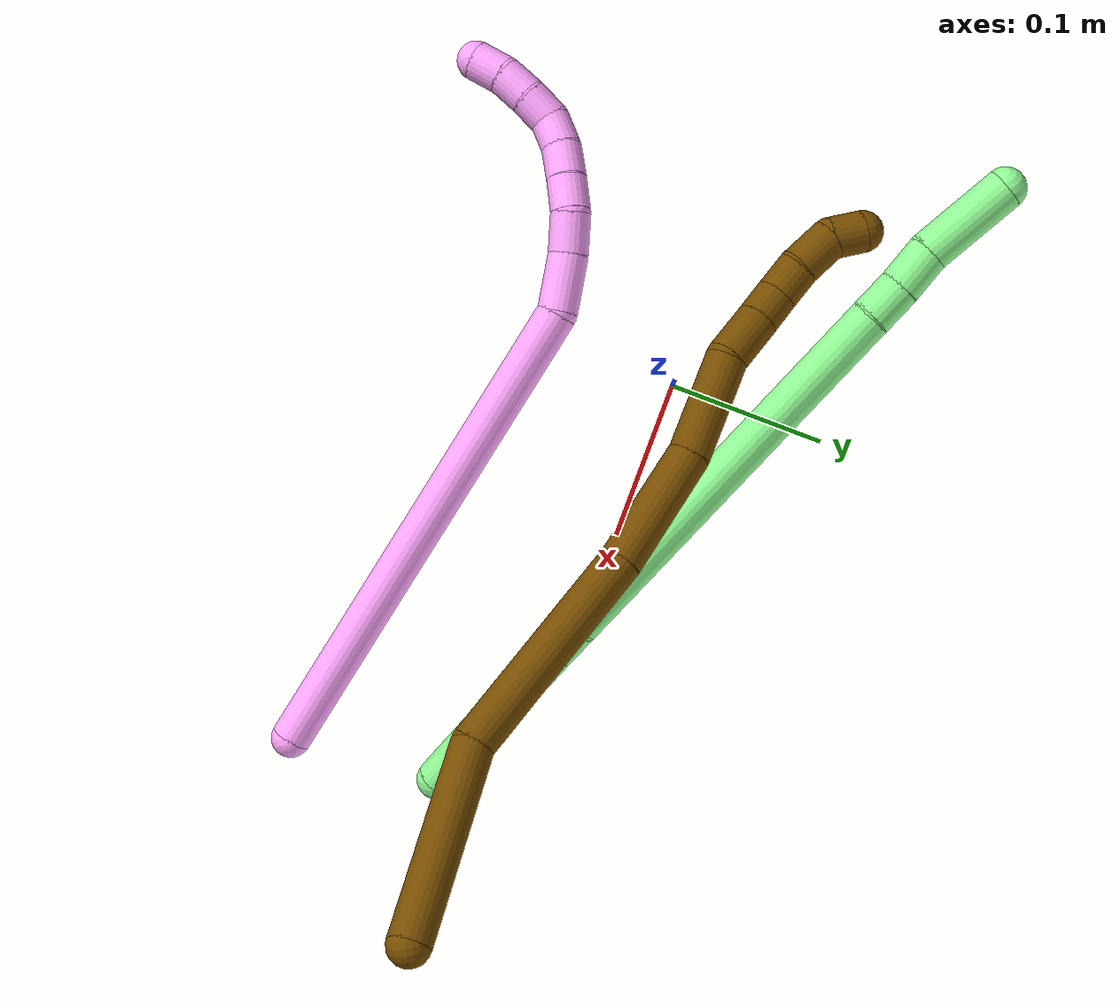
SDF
<sdf version="1.7">
 <world name="default">
  <model name="4">
   <static>0</static>
   <link name="4">
    <collision name="collision-cylinder-e_1_1_4">
     <pose>-0.096292 0.088635 0.085716 -0.802138 -0.663014 0.28988</pose>
     <geometry><cylinder><radius>0.0125</radius><length>0.312892</length></cylinder></geometry>
     <surface>
      <friction><ode><mu>1.16</mu><mu2>1.16</mu2><slip1>0</slip1><slip2>0</slip2></ode></friction>
      <contact><ode><kp>1e+06</kp><kd>1</kd><max_vel>0</max_vel><min_depth>0.001</min_depth></ode></contact>
     </surface>
    </collision>
    <visual name="visual-cylinder-e_1_1_4">
     <pose>-0.096292 0.088635 0.085716 -0.802138 -0.663014 0.28988</pose>
     <geometry><cylinder><radius>0.0125</radius><length>0.312892</length></cylinder></geometry>
     <material><ambient>1 0.65098 0.996078 1</ambient></material>
    </visual>
    <collision name="collision-cylinder-e_2_4_5">
     <pose>-0.197075 0.190198 0.183715 -0.810998 -0.246712 0.106351</pose>
     <geometry><cylinder><radius>0.0125</radius><length>0.036781</length></cylinder></geometry>
     <surface>
      <friction><ode><mu>1.16</mu><mu2>1.16</mu2><slip1>0</slip1><slip2>0</slip2></ode></friction>
      <contact><ode><kp>1e+06</kp><kd>1</kd><max_vel>0</max_vel><min_depth>0.001</min_depth></ode></contact>
     </surface>
    </collision>
    <visual name="visual-cylinder-e_2_4_5">
     <pose>-0.197075 0.190198 0.183715 -0.810998 -0.246712 0.106351</pose>
     <geometry><cylinder><radius>0.0125</radius><length>0.036781</length></cylinder></geometry>
     <material><ambient>1 0.65098 0.996078 1</ambient></material>
    </visual>
    <collision name="collision-cylinder-e_3_5_6">
     <pose>-0.203853 0.213653 0.203356 -0.960692 -0.17622 0.091993</pose>
     <geometry><cylinder><radius>0.0125</radius><length>0.02609</length></cylinder></geometry>
     <surface>
      <friction><ode><mu>1.16</mu><mu2>1.16</mu2><slip1>0</slip1><slip2>0</slip2></ode></friction>
      <contact><ode><kp>1e+06</kp><kd>1</kd><max_vel>0</max_vel><min_depth>0.001</min_depth></ode></contact>
     </surface>
    </collision>
    <visual name="visual-cylinder-e_3_5_6">
     <pose>-0.203853 0.213653 0.203356 -0.960692 -0.17622 0.091993</pose>
     <geometry><cylinder><radius>0.0125</radius><length>0.02609</length></cylinder></geometry>
     <material><ambient>1 0.65098 0.996078 1</ambient></material>
    </visual>
    <collision name="collision-cylinder-e_4_6_7">
     <pose>-0.20519 0.231964 0.218307 -0.797916 0.087109 -0.036741</pose>
     <geometry><cylinder><radius>0.0125</radius><length>0.021832</length></cylinder></geometry>
     <surface>
      <friction><ode><mu>1.16</mu><mu2>1.16</mu2><slip1>0</slip1><slip2>0</slip2></ode></friction>
      <contact><ode><kp>1e+06</kp><kd>1</kd><max_vel>0</max_vel><min_depth>0.001</min_depth></ode></contact>
     </surface>
    </collision>
    <visual name="visual-cylinder-e_4_6_7">
     <pose>-0.20519 0.231964 0.218307 -0.797916 0.087109 -0.036741</pose>
     <geometry><cylinder><radius>0.0125</radius><length>0.021832</length></cylinder></geometry>
     <material><ambient>1 0.65098 0.996078 1</ambient></material>
    </visual>
    <collision name="collision-cylinder-e_5_7_8">
     <pose>-0.202713 0.24695 0.233631 -0.749929 0.143566 -0.056588</pose>
     <geometry><cylinder><radius>0.0125</radius><length>0.02135</length></cylinder></geometry>
     <surface>
      <friction><ode><mu>1.16</mu><mu2>1.16</mu2><slip1>0</slip1><slip2>0</slip2></ode></friction>
      <contact><ode><kp>1e+06</kp><kd>1</kd><max_vel>0</max_vel><min_depth>0.001</min_depth></ode></contact>
     </surface>
    </collision>
    <visual name="visual-cylinder-e_5_7_8">
     <pose>-0.202713 0.24695 0.233631 -0.749929 0.143566 -0.056588</pose>
     <geometry><cylinder><radius>0.0125</radius><length>0.02135</length></cylinder></geometry>
     <material><ambient>1 0.65098 0.996078 1</ambient></material>
    </visual>
    <collision name="collision-cylinder-e_6_8_9">
     <pose>-0.1979 0.261306 0.247694 -0.846372 0.331224 -0.150279</pose>
     <geometry><cylinder><radius>0.0125</radius><length>0.020207</length></cylinder></geometry>
     <surface>
      <friction><ode><mu>1.16</mu><mu2>1.16</mu2><slip1>0</slip1><slip2>0</slip2></ode></friction>
      <contact><ode><kp>1e+06</kp><kd>1</kd><max_vel>0</max_vel><min_depth>0.001</min_depth></ode></contact>
     </surface>
    </collision>
    <visual name="visual-cylinder-e_6_8_9">
     <pose>-0.1979 0.261306 0.247694 -0.846372 0.331224 -0.150279</pose>
     <geometry><cylinder><radius>0.0125</radius><length>0.020207</length></cylinder></geometry>
     <material><ambient>1 0.65098 0.996078 1</ambient></material>
    </visual>
    <collision name="collision-cylinder-e_7_9_10">
     <pose>-0.189021 0.276469 0.256418 -1.28039 0.589819 -0.445026</pose>
     <geometry><cylinder><radius>0.0125</radius><length>0.020114</length></cylinder></geometry>
     <surface>
      <friction><ode><mu>1.16</mu><mu2>1.16</mu2><slip1>0</slip1><slip2>0</slip2></ode></friction>
      <contact><ode><kp>1e+06</kp><kd>1</kd><max_vel>0</max_vel><min_depth>0.001</min_depth></ode></contact>
     </surface>
    </collision>
    <visual name="visual-cylinder-e_7_9_10">
     <pose>-0.189021 0.276469 0.256418 -1.28039 0.589819 -0.445026</pose>
     <geometry><cylinder><radius>0.0125</radius><length>0.020114</length></cylinder></geometry>
     <material><ambient>1 0.65098 0.996078 1</ambient></material>
    </visual>
    <collision name="collision-cylinder-e_8_10_11">
     <pose>-0.176864 0.291588 0.261771 -1.17649 0.705701 -0.481734</pose>
     <geometry><cylinder><radius>0.0125</radius><length>0.02024</length></cylinder></geometry>
     <surface>
      <friction><ode><mu>1.16</mu><mu2>1.16</mu2><slip1>0</slip1><slip2>0</slip2></ode></friction>
      <contact><ode><kp>1e+06</kp><kd>1</kd><max_vel>0</max_vel><min_depth>0.001</min_depth></ode></contact>
     </surface>
    </collision>
    <visual name="visual-cylinder-e_8_10_11">
     <pose>-0.176864 0.291588 0.261771 -1.17649 0.705701 -0.481734</pose>
     <geometry><cylinder><radius>0.0125</radius><length>0.02024</length></cylinder></geometry>
     <material><ambient>1 0.65098 0.996078 1</ambient></material>
    </visual>
    <collision name="collision-cylinder-e_9_11_2">
     <pose>-0.162062 0.304273 0.267197 -1.15407 0.933866 -0.634154</pose>
     <geometry><cylinder><radius>0.0125</radius><length>0.020495</length></cylinder></geometry>
     <surface>
      <friction><ode><mu>1.16</mu><mu2>1.16</mu2><slip1>0</slip1><slip2>0</slip2></ode></friction>
      <contact><ode><kp>1e+06</kp><kd>1</kd><max_vel>0</max_vel><min_depth>0.001</min_depth></ode></contact>
     </surface>
    </collision>
    <visual name="visual-cylinder-e_9_11_2">
     <pose>-0.162062 0.304273 0.267197 -1.15407 0.933866 -0.634154</pose>
     <geometry><cylinder><radius>0.0125</radius><length>0.020495</length></cylinder></geometry>
     <material><ambient>1 0.65098 0.996078 1</ambient></material>
    </visual>
    <collision name="collision-sphere-2">
     <pose>-0.153824 0.309846 0.269664 0 -0 0</pose>
     <geometry><sphere><radius>0.0125</radius></sphere></geometry>
     <surface>
      <friction><ode><mu>1.16</mu><mu2>1.16</mu2><slip1>0</slip1><slip2>0</slip2></ode></friction>
      <contact><ode><kp>1e+06</kp><kd>1</kd><max_vel>0</max_vel><min_depth>0.001</min_depth></ode></contact>
     </surface>
    </collision>
    <visual name="visual-sphere-2">
     <pose>-0.153824 0.309846 0.269664 0 -0 0</pose>
     <geometry><sphere><radius>0.0125</radius></sphere></geometry>
     <material><ambient>1 0.65098 0.996078 1</ambient></material>
    </visual>
    <collision name="collision-sphere-11">
     <pose>-0.1703 0.2987 0.26473 0 -0 0</pose>
     <geometry><sphere><radius>0.0125</radius></sphere></geometry>
     <surface>
      <friction><ode><mu>1.16</mu><mu2>1.16</mu2><slip1>0</slip1><slip2>0</slip2></ode></friction>
      <contact><ode><kp>1e+06</kp><kd>1</kd><max_vel>0</max_vel><min_depth>0.001</min_depth></ode></contact>
     </surface>
    </collision>
    <visual name="visual-sphere-11">
     <pose>-0.1703 0.2987 0.26473 0 -0 0</pose>
     <geometry><sphere><radius>0.0125</radius></sphere></geometry>
     <material><ambient>1 0.65098 0.996078 1</ambient></material>
    </visual>
    <collision name="collision-sphere-10">
     <pose>-0.183427 0.284477 0.258812 0 -0 0</pose>
     <geometry><sphere><radius>0.0125</radius></sphere></geometry>
     <surface>
      <friction><ode><mu>1.16</mu><mu2>1.16</mu2><slip1>0</slip1><slip2>0</slip2></ode></friction>
      <contact><ode><kp>1e+06</kp><kd>1</kd><max_vel>0</max_vel><min_depth>0.001</min_depth></ode></contact>
     </surface>
    </collision>
    <visual name="visual-sphere-10">
     <pose>-0.183427 0.284477 0.258812 0 -0 0</pose>
     <geometry><sphere><radius>0.0125</radius></sphere></geometry>
     <material><ambient>1 0.65098 0.996078 1</ambient></material>
    </visual>
    <collision name="collision-sphere-9">
     <pose>-0.194614 0.268461 0.254025 0 -0 0</pose>
     <geometry><sphere><radius>0.0125</radius></sphere></geometry>
     <surface>
      <friction><ode><mu>1.16</mu><mu2>1.16</mu2><slip1>0</slip1><slip2>0</slip2></ode></friction>
      <contact><ode><kp>1e+06</kp><kd>1</kd><max_vel>0</max_vel><min_depth>0.001</min_depth></ode></contact>
     </surface>
    </collision>
    <visual name="visual-sphere-9">
     <pose>-0.194614 0.268461 0.254025 0 -0 0</pose>
     <geometry><sphere><radius>0.0125</radius></sphere></geometry>
     <material><ambient>1 0.65098 0.996078 1</ambient></material>
    </visual>
    <collision name="collision-sphere-4">
     <pose>-0.192584 0.177269 0.171431 0 -0 0</pose>
     <geometry><sphere><radius>0.0125</radius></sphere></geometry>
     <surface>
      <friction><ode><mu>1.16</mu><mu2>1.16</mu2><slip1>0</slip1><slip2>0</slip2></ode></friction>
      <contact><ode><kp>1e+06</kp><kd>1</kd><max_vel>0</max_vel><min_depth>0.001</min_depth></ode></contact>
     </surface>
    </collision>
    <visual name="visual-sphere-4">
     <pose>-0.192584 0.177269 0.171431 0 -0 0</pose>
     <geometry><sphere><radius>0.0125</radius></sphere></geometry>
     <material><ambient>1 0.65098 0.996078 1</ambient></material>
    </visual>
    <collision name="collision-sphere-1">
     <geometry><sphere><radius>0.0125</radius></sphere></geometry>
     <surface>
      <friction><ode><mu>1.16</mu><mu2>1.16</mu2><slip1>0</slip1><slip2>0</slip2></ode></friction>
      <contact><ode><kp>1e+06</kp><kd>1</kd><max_vel>0</max_vel><min_depth>0.001</min_depth></ode></contact>
     </surface>
    </collision>
    <visual name="visual-sphere-1">
     <geometry><sphere><radius>0.0125</radius></sphere></geometry>
     <material><ambient>1 0.65098 0.996078 1</ambient></material>
    </visual>
    <collision name="collision-sphere-8">
     <pose>-0.201186 0.254151 0.241362 0 -0 0</pose>
     <geometry><sphere><radius>0.0125</radius></sphere></geometry>
     <surface>
      <friction><ode><mu>1.16</mu><mu2>1.16</mu2><slip1>0</slip1><slip2>0</slip2></ode></friction>
      <contact><ode><kp>1e+06</kp><kd>1</kd><max_vel>0</max_vel><min_depth>0.001</min_depth></ode></contact>
     </surface>
    </collision>
    <visual name="visual-sphere-8">
     <pose>-0.201186 0.254151 0.241362 0 -0 0</pose>
     <geometry><sphere><radius>0.0125</radius></sphere></geometry>
     <material><ambient>1 0.65098 0.996078 1</ambient></material>
    </visual>
    <collision name="collision-sphere-5">
     <pose>-0.201566 0.203127 0.195998 0 -0 0</pose>
     <geometry><sphere><radius>0.0125</radius></sphere></geometry>
     <surface>
      <friction><ode><mu>1.16</mu><mu2>1.16</mu2><slip1>0</slip1><slip2>0</slip2></ode></friction>
      <contact><ode><kp>1e+06</kp><kd>1</kd><max_vel>0</max_vel><min_depth>0.001</min_depth></ode></contact>
     </surface>
    </collision>
    <visual name="visual-sphere-5">
     <pose>-0.201566 0.203127 0.195998 0 -0 0</pose>
     <geometry><sphere><radius>0.0125</radius></sphere></geometry>
     <material><ambient>1 0.65098 0.996078 1</ambient></material>
    </visual>
    <collision name="collision-sphere-6">
     <pose>-0.20614 0.224178 0.210714 0 -0 0</pose>
     <geometry><sphere><radius>0.0125</radius></sphere></geometry>
     <surface>
      <friction><ode><mu>1.16</mu><mu2>1.16</mu2><slip1>0</slip1><slip2>0</slip2></ode></friction>
      <contact><ode><kp>1e+06</kp><kd>1</kd><max_vel>0</max_vel><min_depth>0.001</min_depth></ode></contact>
     </surface>
    </collision>
    <visual name="visual-sphere-6">
     <pose>-0.20614 0.224178 0.210714 0 -0 0</pose>
     <geometry><sphere><radius>0.0125</radius></sphere></geometry>
     <material><ambient>1 0.65098 0.996078 1</ambient></material>
    </visual>
    <collision name="collision-sphere-7">
     <pose>-0.20424 0.239749 0.2259 0 -0 0</pose>
     <geometry><sphere><radius>0.0125</radius></sphere></geometry>
     <surface>
      <friction><ode><mu>1.16</mu><mu2>1.16</mu2><slip1>0</slip1><slip2>0</slip2></ode></friction>
      <contact><ode><kp>1e+06</kp><kd>1</kd><max_vel>0</max_vel><min_depth>0.001</min_depth></ode></contact>
     </surface>
    </collision>
    <visual name="visual-sphere-7">
     <pose>-0.20424 0.239749 0.2259 0 -0 0</pose>
     <geometry><sphere><radius>0.0125</radius></sphere></geometry>
     <material><ambient>1 0.65098 0.996078 1</ambient></material>
    </visual>
    <inertial>
     <pose>-0.132411 0.147236 0.139147 0 -0 0</pose>
     <mass>0.5</mass>
     <inertia>
      <ixx>0.002517</ixx>
      <ixy>0</ixy>
      <ixz>0</ixz>
      <iyy>0.002646</iyy>
      <iyz>0</iyz>
      <izz>0.000132</izz>
     </inertia>
    </inertial>
   </link>
   <pose>0.289521 -0.145979 0.012458 2.57722 0.377996 -1.0923</pose>
  </model>
  <model name="12">
   <static>0</static>
   <link name="12">
    <collision name="collision-cylinder-e_1_1_4">
     <pose>-0.009654 0.043946 -0.035239 -2.24668 -0.169734 0.350878</pose>
     <geometry><cylinder><radius>0.0125</radius><length>0.114303</length></cylinder></geometry>
     <surface>
      <friction><ode><mu>1.16</mu><mu2>1.16</mu2><slip1>0</slip1><slip2>0</slip2></ode></friction>
      <contact><ode><kp>1e+06</kp><kd>1</kd><max_vel>0</max_vel><min_depth>0.001</min_depth></ode></contact>
     </surface>
    </collision>
    <visual name="visual-cylinder-e_1_1_4">
     <pose>-0.009654 0.043946 -0.035239 -2.24668 -0.169734 0.350878</pose>
     <geometry><cylinder><radius>0.0125</radius><length>0.114303</length></cylinder></geometry>
     <material><ambient>0.466667 0.301961 0 1</ambient></material>
    </visual>
    <collision name="collision-cylinder-e_2_4_5">
     <pose>-0.054927 0.133046 -0.102937 -2.19405 -0.569677 1.03775</pose>
     <geometry><cylinder><radius>0.0125</radius><length>0.132077</length></cylinder></geometry>
     <surface>
      <friction><ode><mu>1.16</mu><mu2>1.16</mu2><slip1>0</slip1><slip2>0</slip2></ode></friction>
      <contact><ode><kp>1e+06</kp><kd>1</kd><max_vel>0</max_vel><min_depth>0.001</min_depth></ode></contact>
     </surface>
    </collision>
    <visual name="visual-cylinder-e_2_4_5">
     <pose>-0.054927 0.133046 -0.102937 -2.19405 -0.569677 1.03775</pose>
     <geometry><cylinder><radius>0.0125</radius><length>0.132077</length></cylinder></geometry>
     <material><ambient>0.466667 0.301961 0 1</ambient></material>
    </visual>
    <collision name="collision-cylinder-e_3_5_6">
     <pose>-0.108484 0.202322 -0.157093 -2.30335 -0.505071 1.04997</pose>
     <geometry><cylinder><radius>0.0125</radius><length>0.074148</length></cylinder></geometry>
     <surface>
      <friction><ode><mu>1.16</mu><mu2>1.16</mu2><slip1>0</slip1><slip2>0</slip2></ode></friction>
      <contact><ode><kp>1e+06</kp><kd>1</kd><max_vel>0</max_vel><min_depth>0.001</min_depth></ode></contact>
     </surface>
    </collision>
    <visual name="visual-cylinder-e_3_5_6">
     <pose>-0.108484 0.202322 -0.157093 -2.30335 -0.505071 1.04997</pose>
     <geometry><cylinder><radius>0.0125</radius><length>0.074148</length></cylinder></geometry>
     <material><ambient>0.466667 0.301961 0 1</ambient></material>
    </visual>
    <collision name="collision-cylinder-e_4_6_7">
     <pose>-0.137534 0.243563 -0.201363 -2.49272 -0.373757 1.02435</pose>
     <geometry><cylinder><radius>0.0125</radius><length>0.060859</length></cylinder></geometry>
     <surface>
      <friction><ode><mu>1.16</mu><mu2>1.16</mu2><slip1>0</slip1><slip2>0</slip2></ode></friction>
      <contact><ode><kp>1e+06</kp><kd>1</kd><max_vel>0</max_vel><min_depth>0.001</min_depth></ode></contact>
     </surface>
    </collision>
    <visual name="visual-cylinder-e_4_6_7">
     <pose>-0.137534 0.243563 -0.201363 -2.49272 -0.373757 1.02435</pose>
     <geometry><cylinder><radius>0.0125</radius><length>0.060859</length></cylinder></geometry>
     <material><ambient>0.466667 0.301961 0 1</ambient></material>
    </visual>
    <collision name="collision-cylinder-e_5_7_8">
     <pose>-0.156283 0.272019 -0.231073 -2.1327 -0.518209 0.895213</pose>
     <geometry><cylinder><radius>0.0125</radius><length>0.030846</length></cylinder></geometry>
     <surface>
      <friction><ode><mu>1.16</mu><mu2>1.16</mu2><slip1>0</slip1><slip2>0</slip2></ode></friction>
      <contact><ode><kp>1e+06</kp><kd>1</kd><max_vel>0</max_vel><min_depth>0.001</min_depth></ode></contact>
     </surface>
    </collision>
    <visual name="visual-cylinder-e_5_7_8">
     <pose>-0.156283 0.272019 -0.231073 -2.1327 -0.518209 0.895213</pose>
     <geometry><cylinder><radius>0.0125</radius><length>0.030846</length></cylinder></geometry>
     <material><ambient>0.466667 0.301961 0 1</ambient></material>
    </visual>
    <collision name="collision-cylinder-e_6_8_9">
     <pose>-0.168951 0.290699 -0.243178 -2.16558 -0.516 0.922666</pose>
     <geometry><cylinder><radius>0.0125</radius><length>0.020381</length></cylinder></geometry>
     <surface>
      <friction><ode><mu>1.16</mu><mu2>1.16</mu2><slip1>0</slip1><slip2>0</slip2></ode></friction>
      <contact><ode><kp>1e+06</kp><kd>1</kd><max_vel>0</max_vel><min_depth>0.001</min_depth></ode></contact>
     </surface>
    </collision>
    <visual name="visual-cylinder-e_6_8_9">
     <pose>-0.168951 0.290699 -0.243178 -2.16558 -0.516 0.922666</pose>
     <geometry><cylinder><radius>0.0125</radius><length>0.020381</length></cylinder></geometry>
     <material><ambient>0.466667 0.301961 0 1</ambient></material>
    </visual>
    <collision name="collision-cylinder-e_7_9_10">
     <pose>-0.180673 0.303252 -0.254427 -2.44915 -0.68693 1.56213</pose>
     <geometry><cylinder><radius>0.0125</radius><length>0.021113</length></cylinder></geometry>
     <surface>
      <friction><ode><mu>1.16</mu><mu2>1.16</mu2><slip1>0</slip1><slip2>0</slip2></ode></friction>
      <contact><ode><kp>1e+06</kp><kd>1</kd><max_vel>0</max_vel><min_depth>0.001</min_depth></ode></contact>
     </surface>
    </collision>
    <visual name="visual-cylinder-e_7_9_10">
     <pose>-0.180673 0.303252 -0.254427 -2.44915 -0.68693 1.56213</pose>
     <geometry><cylinder><radius>0.0125</radius><length>0.021113</length></cylinder></geometry>
     <material><ambient>0.466667 0.301961 0 1</ambient></material>
    </visual>
    <collision name="collision-cylinder-e_8_10_11">
     <pose>-0.196237 0.316191 -0.266413 -2.20657 -0.745563 1.31817</pose>
     <geometry><cylinder><radius>0.0125</radius><length>0.026149</length></cylinder></geometry>
     <surface>
      <friction><ode><mu>1.16</mu><mu2>1.16</mu2><slip1>0</slip1><slip2>0</slip2></ode></friction>
      <contact><ode><kp>1e+06</kp><kd>1</kd><max_vel>0</max_vel><min_depth>0.001</min_depth></ode></contact>
     </surface>
    </collision>
    <visual name="visual-cylinder-e_8_10_11">
     <pose>-0.196237 0.316191 -0.266413 -2.20657 -0.745563 1.31817</pose>
     <geometry><cylinder><radius>0.0125</radius><length>0.026149</length></cylinder></geometry>
     <material><ambient>0.466667 0.301961 0 1</ambient></material>
    </visual>
    <collision name="collision-cylinder-e_9_11_2">
     <pose>-0.213887 0.328829 -0.271887 -1.524 -1.06055 1.02018</pose>
     <geometry><cylinder><radius>0.0125</radius><length>0.020124</length></cylinder></geometry>
     <surface>
      <friction><ode><mu>1.16</mu><mu2>1.16</mu2><slip1>0</slip1><slip2>0</slip2></ode></friction>
      <contact><ode><kp>1e+06</kp><kd>1</kd><max_vel>0</max_vel><min_depth>0.001</min_depth></ode></contact>
     </surface>
    </collision>
    <visual name="visual-cylinder-e_9_11_2">
     <pose>-0.213887 0.328829 -0.271887 -1.524 -1.06055 1.02018</pose>
     <geometry><cylinder><radius>0.0125</radius><length>0.020124</length></cylinder></geometry>
     <material><ambient>0.466667 0.301961 0 1</ambient></material>
    </visual>
    <collision name="collision-sphere-2">
     <pose>-0.222668 0.333738 -0.271657 0 -0 0</pose>
     <geometry><sphere><radius>0.0125</radius></sphere></geometry>
     <surface>
      <friction><ode><mu>1.16</mu><mu2>1.16</mu2><slip1>0</slip1><slip2>0</slip2></ode></friction>
      <contact><ode><kp>1e+06</kp><kd>1</kd><max_vel>0</max_vel><min_depth>0.001</min_depth></ode></contact>
     </surface>
    </collision>
    <visual name="visual-sphere-2">
     <pose>-0.222668 0.333738 -0.271657 0 -0 0</pose>
     <geometry><sphere><radius>0.0125</radius></sphere></geometry>
     <material><ambient>0.466667 0.301961 0 1</ambient></material>
    </visual>
    <collision name="collision-sphere-11">
     <pose>-0.205107 0.32392 -0.272117 0 -0 0</pose>
     <geometry><sphere><radius>0.0125</radius></sphere></geometry>
     <surface>
      <friction><ode><mu>1.16</mu><mu2>1.16</mu2><slip1>0</slip1><slip2>0</slip2></ode></friction>
      <contact><ode><kp>1e+06</kp><kd>1</kd><max_vel>0</max_vel><min_depth>0.001</min_depth></ode></contact>
     </surface>
    </collision>
    <visual name="visual-sphere-11">
     <pose>-0.205107 0.32392 -0.272117 0 -0 0</pose>
     <geometry><sphere><radius>0.0125</radius></sphere></geometry>
     <material><ambient>0.466667 0.301961 0 1</ambient></material>
    </visual>
    <collision name="collision-sphere-10">
     <pose>-0.187368 0.308462 -0.260709 0 -0 0</pose>
     <geometry><sphere><radius>0.0125</radius></sphere></geometry>
     <surface>
      <friction><ode><mu>1.16</mu><mu2>1.16</mu2><slip1>0</slip1><slip2>0</slip2></ode></friction>
      <contact><ode><kp>1e+06</kp><kd>1</kd><max_vel>0</max_vel><min_depth>0.001</min_depth></ode></contact>
     </surface>
    </collision>
    <visual name="visual-sphere-10">
     <pose>-0.187368 0.308462 -0.260709 0 -0 0</pose>
     <geometry><sphere><radius>0.0125</radius></sphere></geometry>
     <material><ambient>0.466667 0.301961 0 1</ambient></material>
    </visual>
    <collision name="collision-sphere-9">
     <pose>-0.173979 0.298041 -0.248144 0 -0 0</pose>
     <geometry><sphere><radius>0.0125</radius></sphere></geometry>
     <surface>
      <friction><ode><mu>1.16</mu><mu2>1.16</mu2><slip1>0</slip1><slip2>0</slip2></ode></friction>
      <contact><ode><kp>1e+06</kp><kd>1</kd><max_vel>0</max_vel><min_depth>0.001</min_depth></ode></contact>
     </surface>
    </collision>
    <visual name="visual-sphere-9">
     <pose>-0.173979 0.298041 -0.248144 0 -0 0</pose>
     <geometry><sphere><radius>0.0125</radius></sphere></geometry>
     <material><ambient>0.466667 0.301961 0 1</ambient></material>
    </visual>
    <collision name="collision-sphere-4">
     <pose>-0.019308 0.087892 -0.070479 0 -0 0</pose>
     <geometry><sphere><radius>0.0125</radius></sphere></geometry>
     <surface>
      <friction><ode><mu>1.16</mu><mu2>1.16</mu2><slip1>0</slip1><slip2>0</slip2></ode></friction>
      <contact><ode><kp>1e+06</kp><kd>1</kd><max_vel>0</max_vel><min_depth>0.001</min_depth></ode></contact>
     </surface>
    </collision>
    <visual name="visual-sphere-4">
     <pose>-0.019308 0.087892 -0.070479 0 -0 0</pose>
     <geometry><sphere><radius>0.0125</radius></sphere></geometry>
     <material><ambient>0.466667 0.301961 0 1</ambient></material>
    </visual>
    <collision name="collision-sphere-1">
     <geometry><sphere><radius>0.0125</radius></sphere></geometry>
     <surface>
      <friction><ode><mu>1.16</mu><mu2>1.16</mu2><slip1>0</slip1><slip2>0</slip2></ode></friction>
      <contact><ode><kp>1e+06</kp><kd>1</kd><max_vel>0</max_vel><min_depth>0.001</min_depth></ode></contact>
     </surface>
    </collision>
    <visual name="visual-sphere-1">
     <geometry><sphere><radius>0.0125</radius></sphere></geometry>
     <material><ambient>0.466667 0.301961 0 1</ambient></material>
    </visual>
    <collision name="collision-sphere-8">
     <pose>-0.163923 0.283358 -0.238211 0 -0 0</pose>
     <geometry><sphere><radius>0.0125</radius></sphere></geometry>
     <surface>
      <friction><ode><mu>1.16</mu><mu2>1.16</mu2><slip1>0</slip1><slip2>0</slip2></ode></friction>
      <contact><ode><kp>1e+06</kp><kd>1</kd><max_vel>0</max_vel><min_depth>0.001</min_depth></ode></contact>
     </surface>
    </collision>
    <visual name="visual-sphere-8">
     <pose>-0.163923 0.283358 -0.238211 0 -0 0</pose>
     <geometry><sphere><radius>0.0125</radius></sphere></geometry>
     <material><ambient>0.466667 0.301961 0 1</ambient></material>
    </visual>
    <collision name="collision-sphere-5">
     <pose>-0.090545 0.1782 -0.135395 0 -0 0</pose>
     <geometry><sphere><radius>0.0125</radius></sphere></geometry>
     <surface>
      <friction><ode><mu>1.16</mu><mu2>1.16</mu2><slip1>0</slip1><slip2>0</slip2></ode></friction>
      <contact><ode><kp>1e+06</kp><kd>1</kd><max_vel>0</max_vel><min_depth>0.001</min_depth></ode></contact>
     </surface>
    </collision>
    <visual name="visual-sphere-5">
     <pose>-0.090545 0.1782 -0.135395 0 -0 0</pose>
     <geometry><sphere><radius>0.0125</radius></sphere></geometry>
     <material><ambient>0.466667 0.301961 0 1</ambient></material>
    </visual>
    <collision name="collision-sphere-6">
     <pose>-0.126423 0.226444 -0.178791 0 -0 0</pose>
     <geometry><sphere><radius>0.0125</radius></sphere></geometry>
     <surface>
      <friction><ode><mu>1.16</mu><mu2>1.16</mu2><slip1>0</slip1><slip2>0</slip2></ode></friction>
      <contact><ode><kp>1e+06</kp><kd>1</kd><max_vel>0</max_vel><min_depth>0.001</min_depth></ode></contact>
     </surface>
    </collision>
    <visual name="visual-sphere-6">
     <pose>-0.126423 0.226444 -0.178791 0 -0 0</pose>
     <geometry><sphere><radius>0.0125</radius></sphere></geometry>
     <material><ambient>0.466667 0.301961 0 1</ambient></material>
    </visual>
    <collision name="collision-sphere-7">
     <pose>-0.148644 0.260681 -0.223934 0 -0 0</pose>
     <geometry><sphere><radius>0.0125</radius></sphere></geometry>
     <surface>
      <friction><ode><mu>1.16</mu><mu2>1.16</mu2><slip1>0</slip1><slip2>0</slip2></ode></friction>
      <contact><ode><kp>1e+06</kp><kd>1</kd><max_vel>0</max_vel><min_depth>0.001</min_depth></ode></contact>
     </surface>
    </collision>
    <visual name="visual-sphere-7">
     <pose>-0.148644 0.260681 -0.223934 0 -0 0</pose>
     <geometry><sphere><radius>0.0125</radius></sphere></geometry>
     <material><ambient>0.466667 0.301961 0 1</ambient></material>
    </visual>
    <inertial>
     <pose>-0.092573 0.176047 -0.14284 0 -0 0</pose>
     <mass>0.5</mass>
     <inertia>
      <ixx>0.000455</ixx>
      <ixy>0</ixy>
      <ixz>0</ixz>
      <iyy>0.000208</iyy>
      <iyz>0</iyz>
      <izz>-0.000138</izz>
     </inertia>
    </inertial>
   </link>
   <pose>0.329252 -0.027431 0.240584 -1.88726 0.326755 -1.12178</pose>
  </model>
  <model name="13">
   <static>0</static>
   <link name="13">
    <collision name="collision-cylinder-e_1_1_4">
     <pose>-0.047312 0.005264 -0.037453 -3.00196 -0.896433 2.85276</pose>
     <geometry><cylinder><radius>0.0125</radius><length>0.121142</length></cylinder></geometry>
     <surface>
      <friction><ode><mu>1.16</mu><mu2>1.16</mu2><slip1>0</slip1><slip2>0</slip2></ode></friction>
      <contact><ode><kp>1e+06</kp><kd>1</kd><max_vel>0</max_vel><min_depth>0.001</min_depth></ode></contact>
     </surface>
    </collision>
    <visual name="visual-cylinder-e_1_1_4">
     <pose>-0.047312 0.005264 -0.037453 -3.00196 -0.896433 2.85276</pose>
     <geometry><cylinder><radius>0.0125</radius><length>0.121142</length></cylinder></geometry>
     <material><ambient>0.564706 0.984314 0.572549 1</ambient></material>
    </visual>
    <collision name="collision-cylinder-e_2_4_5">
     <pose>-0.104051 0.010701 -0.082813 -3.11967 -0.87262 3.09457</pose>
     <geometry><cylinder><radius>0.0125</radius><length>0.024611</length></cylinder></geometry>
     <surface>
      <friction><ode><mu>1.16</mu><mu2>1.16</mu2><slip1>0</slip1><slip2>0</slip2></ode></friction>
      <contact><ode><kp>1e+06</kp><kd>1</kd><max_vel>0</max_vel><min_depth>0.001</min_depth></ode></contact>
     </surface>
    </collision>
    <visual name="visual-cylinder-e_2_4_5">
     <pose>-0.104051 0.010701 -0.082813 -3.11967 -0.87262 3.09457</pose>
     <geometry><cylinder><radius>0.0125</radius><length>0.024611</length></cylinder></geometry>
     <material><ambient>0.564706 0.984314 0.572549 1</ambient></material>
    </visual>
    <collision name="collision-cylinder-e_3_5_6">
     <pose>-0.218517 0.047859 -0.144244 -2.53693 -1.01627 2.12056</pose>
     <geometry><cylinder><radius>0.0125</radius><length>0.24711</length></cylinder></geometry>
     <surface>
      <friction><ode><mu>1.16</mu><mu2>1.16</mu2><slip1>0</slip1><slip2>0</slip2></ode></friction>
      <contact><ode><kp>1e+06</kp><kd>1</kd><max_vel>0</max_vel><min_depth>0.001</min_depth></ode></contact>
     </surface>
    </collision>
    <visual name="visual-cylinder-e_3_5_6">
     <pose>-0.218517 0.047859 -0.144244 -2.53693 -1.01627 2.12056</pose>
     <geometry><cylinder><radius>0.0125</radius><length>0.24711</length></cylinder></geometry>
     <material><ambient>0.564706 0.984314 0.572549 1</ambient></material>
    </visual>
    <collision name="collision-cylinder-e_4_6_7">
     <pose>-0.33381 0.089418 -0.202 -2.31747 -1.02446 1.82007</pose>
     <geometry><cylinder><radius>0.0125</radius><length>0.023998</length></cylinder></geometry>
     <surface>
      <friction><ode><mu>1.16</mu><mu2>1.16</mu2><slip1>0</slip1><slip2>0</slip2></ode></friction>
      <contact><ode><kp>1e+06</kp><kd>1</kd><max_vel>0</max_vel><min_depth>0.001</min_depth></ode></contact>
     </surface>
    </collision>
    <visual name="visual-cylinder-e_4_6_7">
     <pose>-0.33381 0.089418 -0.202 -2.31747 -1.02446 1.82007</pose>
     <geometry><cylinder><radius>0.0125</radius><length>0.023998</length></cylinder></geometry>
     <material><ambient>0.564706 0.984314 0.572549 1</ambient></material>
    </visual>
    <collision name="collision-cylinder-e_5_7_8">
     <pose>-0.354835 0.099434 -0.211567 -2.34619 -0.955289 1.77808</pose>
     <geometry><cylinder><radius>0.0125</radius><length>0.026389</length></cylinder></geometry>
     <surface>
      <friction><ode><mu>1.16</mu><mu2>1.16</mu2><slip1>0</slip1><slip2>0</slip2></ode></friction>
      <contact><ode><kp>1e+06</kp><kd>1</kd><max_vel>0</max_vel><min_depth>0.001</min_depth></ode></contact>
     </surface>
    </collision>
    <visual name="visual-cylinder-e_5_7_8">
     <pose>-0.354835 0.099434 -0.211567 -2.34619 -0.955289 1.77808</pose>
     <geometry><cylinder><radius>0.0125</radius><length>0.026389</length></cylinder></geometry>
     <material><ambient>0.564706 0.984314 0.572549 1</ambient></material>
    </visual>
    <collision name="collision-cylinder-e_6_8_2">
     <pose>-0.391343 0.111742 -0.226681 -2.52942 -1.13604 2.22202</pose>
     <geometry><cylinder><radius>0.0125</radius><length>0.05675</length></cylinder></geometry>
     <surface>
      <friction><ode><mu>1.16</mu><mu2>1.16</mu2><slip1>0</slip1><slip2>0</slip2></ode></friction>
      <contact><ode><kp>1e+06</kp><kd>1</kd><max_vel>0</max_vel><min_depth>0.001</min_depth></ode></contact>
     </surface>
    </collision>
    <visual name="visual-cylinder-e_6_8_2">
     <pose>-0.391343 0.111742 -0.226681 -2.52942 -1.13604 2.22202</pose>
     <geometry><cylinder><radius>0.0125</radius><length>0.05675</length></cylinder></geometry>
     <material><ambient>0.564706 0.984314 0.572549 1</ambient></material>
    </visual>
    <collision name="collision-sphere-2">
     <pose>-0.417079 0.11861 -0.236462 0 -0 0</pose>
     <geometry><sphere><radius>0.0125</radius></sphere></geometry>
     <surface>
      <friction><ode><mu>1.16</mu><mu2>1.16</mu2><slip1>0</slip1><slip2>0</slip2></ode></friction>
      <contact><ode><kp>1e+06</kp><kd>1</kd><max_vel>0</max_vel><min_depth>0.001</min_depth></ode></contact>
     </surface>
    </collision>
    <visual name="visual-sphere-2">
     <pose>-0.417079 0.11861 -0.236462 0 -0 0</pose>
     <geometry><sphere><radius>0.0125</radius></sphere></geometry>
     <material><ambient>0.564706 0.984314 0.572549 1</ambient></material>
    </visual>
    <collision name="collision-sphere-4">
     <pose>-0.094625 0.010528 -0.074905 0 -0 0</pose>
     <geometry><sphere><radius>0.0125</radius></sphere></geometry>
     <surface>
      <friction><ode><mu>1.16</mu><mu2>1.16</mu2><slip1>0</slip1><slip2>0</slip2></ode></friction>
      <contact><ode><kp>1e+06</kp><kd>1</kd><max_vel>0</max_vel><min_depth>0.001</min_depth></ode></contact>
     </surface>
    </collision>
    <visual name="visual-sphere-4">
     <pose>-0.094625 0.010528 -0.074905 0 -0 0</pose>
     <geometry><sphere><radius>0.0125</radius></sphere></geometry>
     <material><ambient>0.564706 0.984314 0.572549 1</ambient></material>
    </visual>
    <collision name="collision-sphere-1">
     <geometry><sphere><radius>0.0125</radius></sphere></geometry>
     <surface>
      <friction><ode><mu>1.16</mu><mu2>1.16</mu2><slip1>0</slip1><slip2>0</slip2></ode></friction>
      <contact><ode><kp>1e+06</kp><kd>1</kd><max_vel>0</max_vel><min_depth>0.001</min_depth></ode></contact>
     </surface>
    </collision>
    <visual name="visual-sphere-1">
     <geometry><sphere><radius>0.0125</radius></sphere></geometry>
     <material><ambient>0.564706 0.984314 0.572549 1</ambient></material>
    </visual>
    <collision name="collision-sphere-8">
     <pose>-0.365608 0.104875 -0.2169 0 -0 0</pose>
     <geometry><sphere><radius>0.0125</radius></sphere></geometry>
     <surface>
      <friction><ode><mu>1.16</mu><mu2>1.16</mu2><slip1>0</slip1><slip2>0</slip2></ode></friction>
      <contact><ode><kp>1e+06</kp><kd>1</kd><max_vel>0</max_vel><min_depth>0.001</min_depth></ode></contact>
     </surface>
    </collision>
    <visual name="visual-sphere-8">
     <pose>-0.365608 0.104875 -0.2169 0 -0 0</pose>
     <geometry><sphere><radius>0.0125</radius></sphere></geometry>
     <material><ambient>0.564706 0.984314 0.572549 1</ambient></material>
    </visual>
    <collision name="collision-sphere-5">
     <pose>-0.113477 0.010875 -0.090722 0 -0 0</pose>
     <geometry><sphere><radius>0.0125</radius></sphere></geometry>
     <surface>
      <friction><ode><mu>1.16</mu><mu2>1.16</mu2><slip1>0</slip1><slip2>0</slip2></ode></friction>
      <contact><ode><kp>1e+06</kp><kd>1</kd><max_vel>0</max_vel><min_depth>0.001</min_depth></ode></contact>
     </surface>
    </collision>
    <visual name="visual-sphere-5">
     <pose>-0.113477 0.010875 -0.090722 0 -0 0</pose>
     <geometry><sphere><radius>0.0125</radius></sphere></geometry>
     <material><ambient>0.564706 0.984314 0.572549 1</ambient></material>
    </visual>
    <collision name="collision-sphere-6">
     <pose>-0.323557 0.084843 -0.197766 0 -0 0</pose>
     <geometry><sphere><radius>0.0125</radius></sphere></geometry>
     <surface>
      <friction><ode><mu>1.16</mu><mu2>1.16</mu2><slip1>0</slip1><slip2>0</slip2></ode></friction>
      <contact><ode><kp>1e+06</kp><kd>1</kd><max_vel>0</max_vel><min_depth>0.001</min_depth></ode></contact>
     </surface>
    </collision>
    <visual name="visual-sphere-6">
     <pose>-0.323557 0.084843 -0.197766 0 -0 0</pose>
     <geometry><sphere><radius>0.0125</radius></sphere></geometry>
     <material><ambient>0.564706 0.984314 0.572549 1</ambient></material>
    </visual>
    <collision name="collision-sphere-7">
     <pose>-0.344062 0.093994 -0.206235 0 -0 0</pose>
     <geometry><sphere><radius>0.0125</radius></sphere></geometry>
     <surface>
      <friction><ode><mu>1.16</mu><mu2>1.16</mu2><slip1>0</slip1><slip2>0</slip2></ode></friction>
      <contact><ode><kp>1e+06</kp><kd>1</kd><max_vel>0</max_vel><min_depth>0.001</min_depth></ode></contact>
     </surface>
    </collision>
    <visual name="visual-sphere-7">
     <pose>-0.344062 0.093994 -0.206235 0 -0 0</pose>
     <geometry><sphere><radius>0.0125</radius></sphere></geometry>
     <material><ambient>0.564706 0.984314 0.572549 1</ambient></material>
    </visual>
    <inertial>
     <pose>-0.203746 0.047677 -0.131028 0 -0 0</pose>
     <mass>0.5</mass>
     <inertia>
      <ixx>0.000125</ixx>
      <ixy>0</ixy>
      <ixz>0</ixz>
      <iyy>0.001852</iyy>
      <iyz>0</iyz>
      <izz>0.000801</izz>
     </inertia>
    </inertial>
   </link>
   <pose>0.278466 -0.051026 0.03257 -2.33896 0.030593 -0.948483</pose>
  </model>
 </world>
</sdf>
